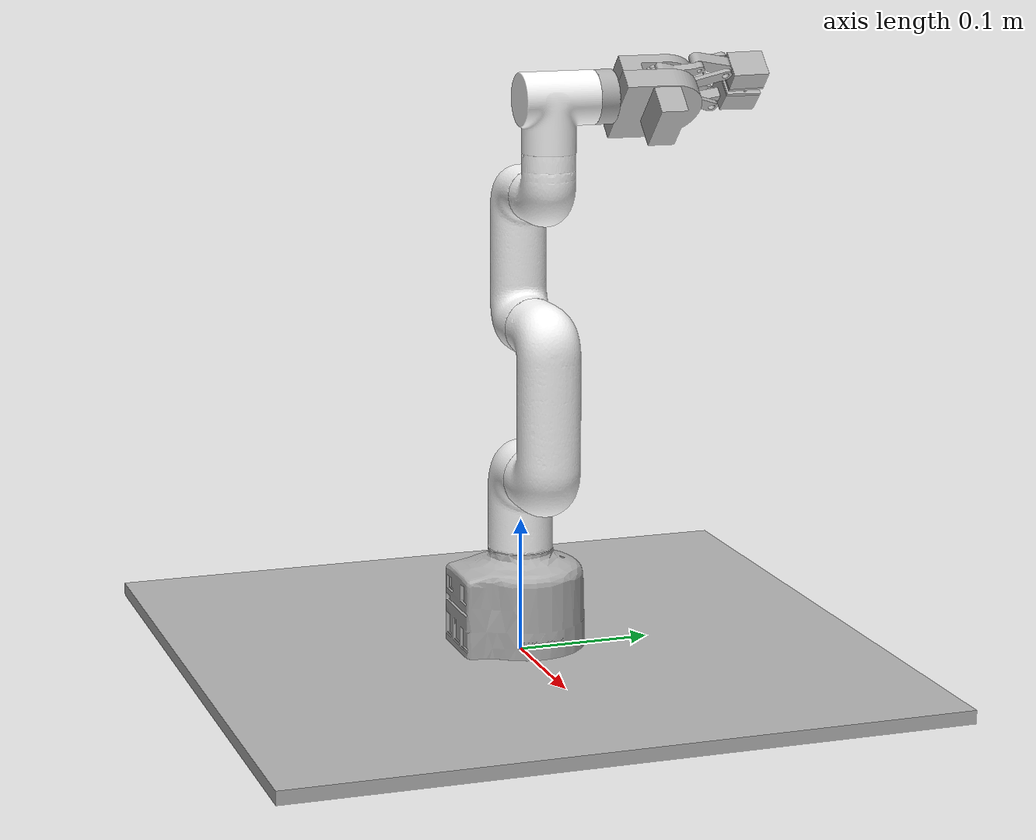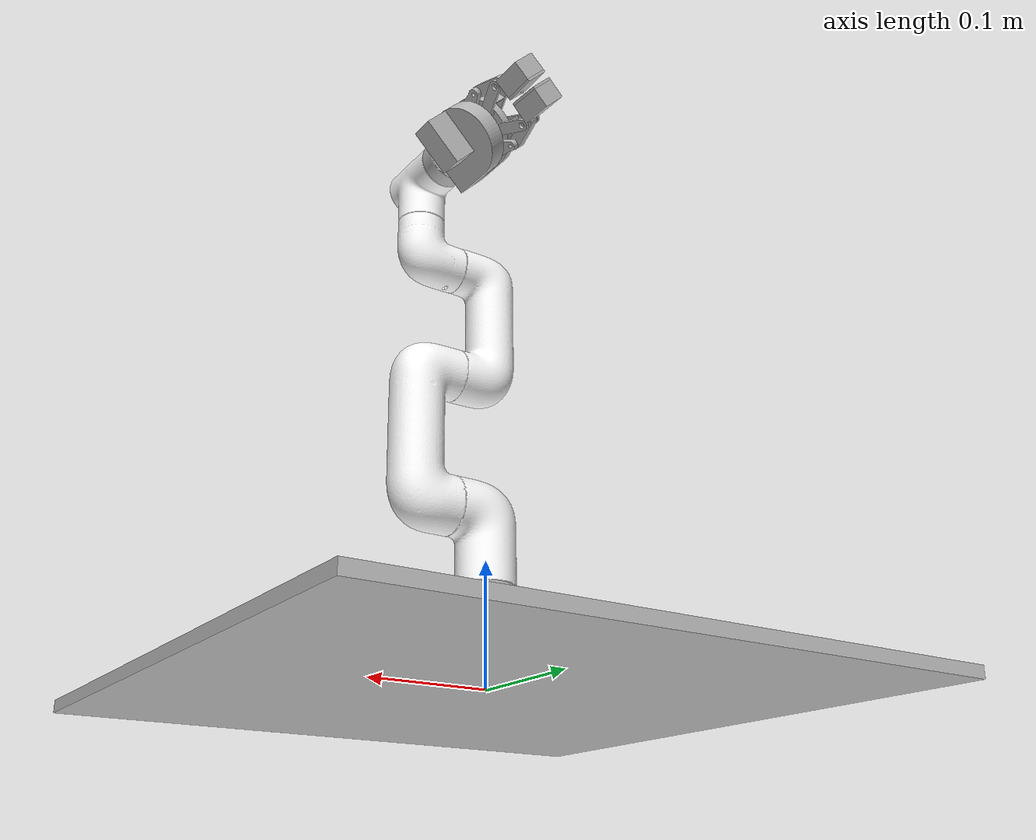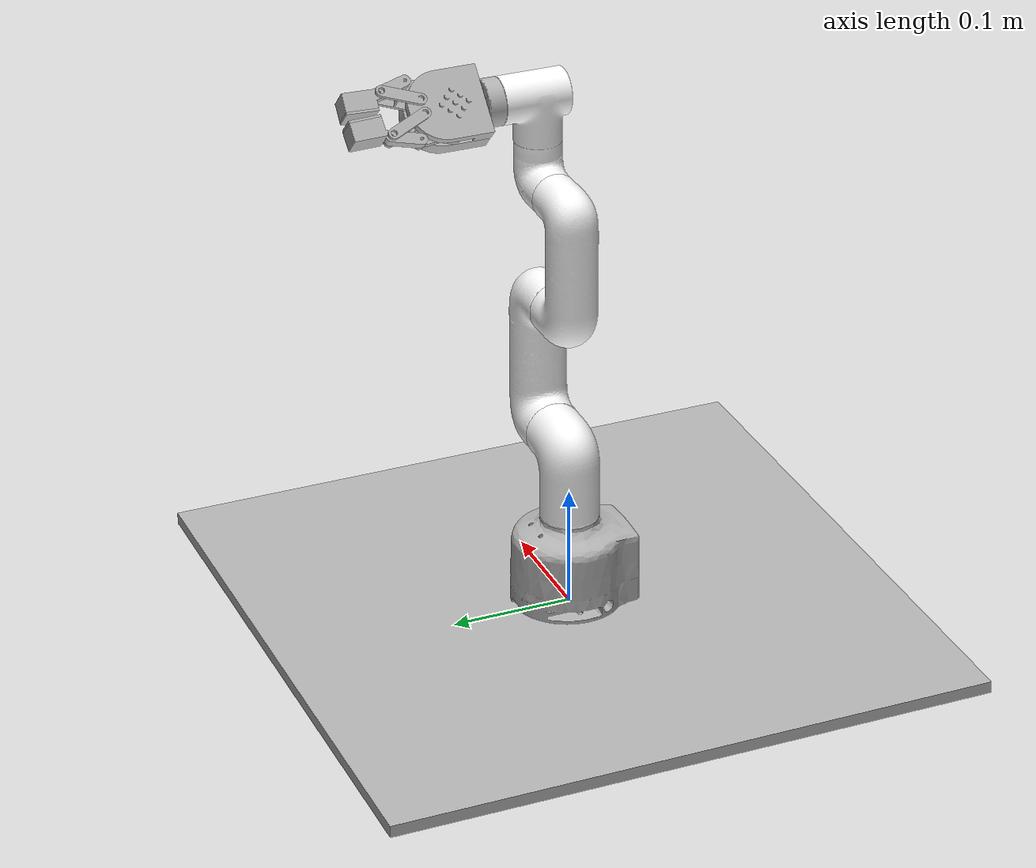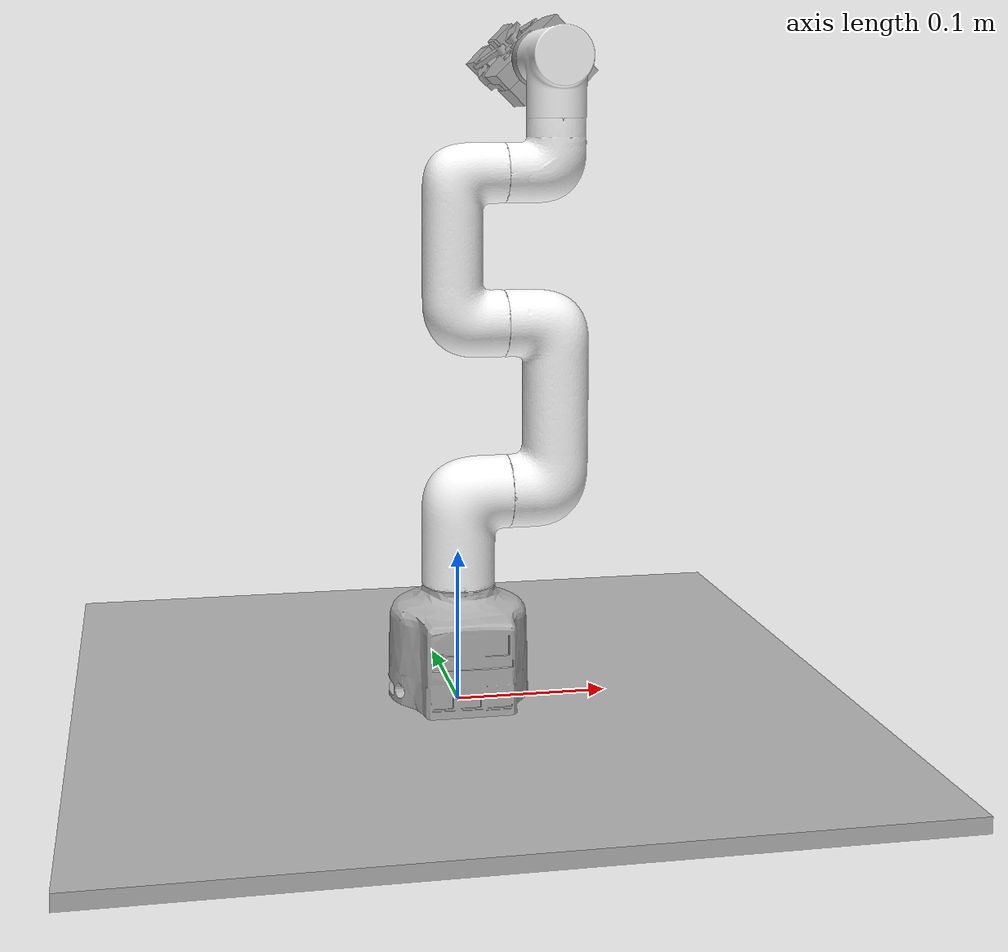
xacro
<?xml version="1.0" ?>
<robot name="mycobot" xmlns:xacro="http://www.ros.org/wiki/xacro">

<xacro:include filename="$(find mycobot)/urdf/materials.xacro" />
<xacro:include filename="$(find mycobot)/urdf/transmissionPos.xacro" />
<xacro:include filename="$(find mycobot)/urdf/gazebo.xacro" />
<xacro:property name="effort" value="10.0"/>
<xacro:property name="velocity" value="0.5"/>
<xacro:property name="friction" value="0.5"/>
<xacro:property name="damping" value="0.03"/>

<xacro:macro name="mimic_joint_plugin_gazebo" params="name_prefix parent_joint mimic_joint has_pid:=true multiplier:=1.0 offset:=0 sensitiveness:=0.0 max_effort:=1.0 robot_namespace:='/mycobot1'">
  <gazebo>
    <plugin name="${name_prefix}mimic_joint_plugin" filename="libroboticsgroup_upatras_gazebo_mimic_joint_plugin.so">
      <joint>${parent_joint}</joint>
      <mimicJoint>${mimic_joint}</mimicJoint>
      <xacro:if value="${has_pid}">                     <!-- if set to true, PID parameters from "/gazebo_ros_control/pid_gains/${mimic_joint}" are loaded -->
        <hasPID />
      </xacro:if>
      <multiplier>${multiplier}</multiplier>
      <offset>${offset}</offset>
      <sensitiveness>${sensitiveness}</sensitiveness>   <!-- if absolute difference between setpoint and process value is below this threshold, do nothing; 0.0 = disable [rad] -->
      <maxEffort>${max_effort}</maxEffort>              <!-- only taken into account if has_pid:=true [Nm] -->
      <xacro:unless value="${robot_namespace == '/mycobot1'}">
        <robotNamespace>${robot_namespace}</robotNamespace>
      </xacro:unless>
    </plugin>
  </gazebo>
</xacro:macro>

<link name="base_link">

<visual>
    <origin xyz="0 0 0" rpy="0 0 0"/>
    <geometry>
      <box size="0.5 0.5 0.01"/>
    </geometry>
    <material name="silver"/>
  </visual>
  <collision>
    <origin xyz="0 0 0" rpy="0 0 0"/>
    <geometry>
       <box size="0.5 0.5 0.01"/>
    </geometry>
  </collision>
</link>

<link name="Base_v8_1">
  <inertial>
    <origin xyz="-0.0007674952002842419 -0.00015853874615712218 0.038132613312138734" rpy="0 0 0"/>
    <mass value="1.76519268648240446"/>
    <inertia ixx="0.000215" iyy="0.000214" izz="0.000427" ixy="0.0" iyz="0.0" ixz="0.0"/>
  </inertial>
  <visual>
    <origin xyz="-0.0 -0.0 -0.0005" rpy="0 0 0"/>
    <geometry>
      <mesh filename="package://mycobot/meshes/Base_v8_1.stl" scale="0.001 0.001 0.001"/>
    </geometry>
    <material name="silver"/>
  </visual>
  <collision>
    <origin xyz="-0.0 -0.0 -0.0005" rpy="0 0 0"/>
    <geometry>
      <mesh filename="package://mycobot/meshes/Base_v8_1.stl" scale="0.001 0.001 0.001"/>
    </geometry>
  </collision>
</link>

<link name="Link2_v11_1">
  <inertial>
    <origin xyz="0.00493234364366476 -0.00029024291869713694 0.040093567041392386" rpy="0 0 0"/>
    <mass value="0.2785186125385807"/>
    <inertia ixx="0.000478" iyy="0.000461" izz="4.3e-05" ixy="-0.0" iyz="-0.0" ixz="-3.7e-05"/>
  </inertial>
  <visual>
    <origin xyz="0.0 -0.0 -0.0815" rpy="0 0 0"/>
    <geometry>
      <mesh filename="package://mycobot/meshes/Link2_v11_1.stl" scale="0.001 0.001 0.001"/>
    </geometry>
    <material name="white"/>
  </visual>
  <collision>
    <origin xyz="0.0 -0.0 -0.0815" rpy="0 0 0"/>
    <geometry>
      <mesh filename="package://mycobot/meshes/Link2_v11_1.stl" scale="0.001 0.001 0.001"/>
    </geometry>
  </collision>
</link>

<link name="Link3_v4_1">
  <inertial>
    <origin xyz="0.025442789888904478 4.750811867512109e-05 0.054179869855452395" rpy="0 0 0"/>
    <mass value="0.185186125385807"/>
    <inertia ixx="0.000478" iyy="0.000461" izz="4.3e-05" ixy="-0.0" iyz="-0.0" ixz="-3.7e-05"/>
  </inertial>
  <visual>
    <origin xyz="-0.033616 0.000561 -0.13974" rpy="0 0 0"/>
    <geometry>
      <mesh filename="package://mycobot/meshes/Link3_v4_1.stl" scale="0.001 0.001 0.001"/>
    </geometry>
    <material name="white"/>
  </visual>
  <collision>
    <origin xyz="-0.033616 0.000561 -0.13974" rpy="0 0 0"/>
    <geometry>
      <mesh filename="package://mycobot/meshes/Link3_v4_1.stl" scale="0.001 0.001 0.001"/>
    </geometry>
  </collision>
</link>

<link name="Link4_v5_1">
  <inertial>
    <origin xyz="-0.02758732009433006 4.597686248857067e-07 0.046114204196164466" rpy="0 0 0"/>
    <mass value="0.18425390113795425"/>
    <inertia ixx="0.000692" iyy="0.000665" izz="5.7e-05" ixy="-0.0" iyz="-0.0" ixz="4.4e-05"/>
  </inertial>
  <visual>
    <origin xyz="-0.030392 0.000524 -0.250217" rpy="0 0 0"/>
    <geometry>
      <mesh filename="package://mycobot/meshes/Link4_v5_1.stl" scale="0.001 0.001 0.001"/>
    </geometry>
    <material name="white"/>
  </visual>
  <collision>
    <origin xyz="-0.030392 0.000524 -0.250217" rpy="0 0 0"/>
    <geometry>
      <mesh filename="package://mycobot/meshes/Link4_v5_1.stl" scale="0.001 0.001 0.001"/>
    </geometry>
  </collision>
</link>

<link name="Link5_v17_1">
  <inertial>
    <origin xyz="0.024931350905881843 -0.0006156299812604405 0.01084040158683891" rpy="0 0 0"/>
    <mass value="0.1185186125385807"/>
    <inertia ixx="0.000478" iyy="0.000461" izz="4.3e-05" ixy="-0.0" iyz="-0.0" ixz="-3.7e-05"/>
  </inertial>
  <visual>
    <origin xyz="-0.030892 0.000524 -0.346117" rpy="0 0 0"/>
    <geometry>
      <mesh filename="package://mycobot/meshes/Link5_v17_1.stl" scale="0.001 0.001 0.001"/>
    </geometry>
    <material name="white"/>
  </visual>
  <collision>
    <origin xyz="-0.030892 0.000524 -0.346117" rpy="0 0 0"/>
    <geometry>
      <mesh filename="package://mycobot/meshes/Link5_v17_1.stl" scale="0.001 0.001 0.001"/>
    </geometry>
  </collision>
</link>

<link name="Link6_v7_1">
  <inertial>
    <origin xyz="-5.219821113858214e-06 0.003892509541421077 0.031003933303585918" rpy="0 0 0"/>
   <mass value="0.0785186125385807"/>
    <inertia ixx="0.000478" iyy="0.000461" izz="4.3e-05" ixy="-0.0" iyz="-0.0" ixz="-3.7e-05"/>
  </inertial>
  <visual>
    <origin xyz="-0.063371 0.000626 -0.379756" rpy="0 0 0"/>
    <geometry>
      <mesh filename="package://mycobot/meshes/Link6_v7_1.stl" scale="0.001 0.001 0.001"/>
    </geometry>
    <material name="white"/>
  </visual>
  <collision>
    <origin xyz="-0.063371 0.000626 -0.379756" rpy="0 0 0"/>
    <geometry>
      <mesh filename="package://mycobot/meshes/Link6_v7_1.stl" scale="0.001 0.001 0.001"/>
    </geometry>
  </collision>
</link>

<link name="Link7_v7_1">
  <inertial>
    <origin xyz="-1.694662708301431e-06 0.00681634498427619 -3.0979888756110796e-05" rpy="0 0 0"/>
     <mass value="0.08993217084915655"/>
    <inertia ixx="0.000215" iyy="0.000214" izz="0.000427" ixy="0.0" iyz="0.0" ixz="0.0"/>
  </inertial>
  <visual>
    <origin xyz="-0.063365 -0.031968 -0.418681" rpy="0 0 0"/>
    <geometry>
      <mesh filename="package://mycobot/meshes/Link7_v7_1.stl" scale="0.001 0.001 0.001"/>
    </geometry>
    <material name="silver"/>
  </visual>
  <collision>
    <origin xyz="-0.063365 -0.031968 -0.418681" rpy="0 0 0"/>
    <geometry>
      <mesh filename="package://mycobot/meshes/Link7_v7_1.stl" scale="0.001 0.001 0.001"/>
    </geometry>
  </collision>
</link>

<link name="Pickpoint">
  <visual>
    <origin xyz="0. 0 0" rpy="0 0 0"/>
    <geometry>
      <sphere radius="0.001"/>
    </geometry>
    <material name="silver"/>
  </visual>
</link>

<!-- ################# CLAW GRIPER ########################## -->

<!--############################# MYCOBOTORIGINALGRIPPER ORIENTAION ONE ############################# -->

<!--############################# MYCOBOTORIGINALGRIPPER ORIENTAION TWO ############################# -->
<link name="CobotBody1_v6_1">
  <inertial>
    <origin xyz="-0.02756607335265441 0.026996744232247016 -0.012737580384016955" rpy="0 0 0"/>
    <mass value="0.04713602513670684"/>
    <inertia ixx="2.3e-05" iyy="1.4e-05" izz="2.3e-05" ixy="0.0" iyz="-0.0" ixz="-7e-06"/>
  </inertial>
  <visual>
    <origin xyz="-0.083514 -0.046665 -0.438839" rpy="0 0 0"/>
    <geometry>
      <mesh filename="package://mycobot/meshes2/CobotBody1_v6_1.stl" scale="0.001 0.001 0.001"/>
    </geometry>
    <material name="silver"/>
  </visual>
  <collision>
    <origin xyz="-0.083514 -0.046665 -0.438839" rpy="0 0 0"/>
    <geometry>
      <mesh filename="package://mycobot/meshes2/CobotBody1_v6_1.stl" scale="0.001 0.001 0.001"/>
    </geometry>
  </collision>
</link>

<link name="CobotBody2_v8_1">
  <inertial>
    <origin xyz="0.01354853014215554 0.029167692230647718 -0.010093312955097855" rpy="0 0 0"/>
    <mass value="0.06728253732026138"/>
    <inertia ixx="3.3e-05" iyy="2.9e-05" izz="3.8e-05" ixy="-1e-06" iyz="0.0" ixz="-7e-06"/>
  </inertial>
  <visual>
    <origin xyz="-0.063365 -0.045668 -0.418683" rpy="0 0 0"/>
    <geometry>
      <mesh filename="package://mycobot/meshes2/CobotBody2_v8_1.stl" scale="0.001 0.001 0.001"/>
    </geometry>
    <material name="silver"/>
  </visual>
  <collision>
    <origin xyz="-0.063365 -0.045668 -0.418683" rpy="0 0 0"/>
    <geometry>
      <mesh filename="package://mycobot/meshes2/CobotBody2_v8_1.stl" scale="0.001 0.001 0.001"/>
    </geometry>
  </collision>
</link>

<link name="grippergear_v4_1">
  <inertial>
    <origin xyz="0.003681787468920672 0.006869589390317968 0.00014760336092256576" rpy="0 0 0"/>
    <mass value="0.025493766775652973"/>
    <inertia ixx="3e-06" iyy="1e-06" izz="3e-06" ixy="-0.0" iyz="-0.0" ixz="-0.0"/>
  </inertial>
  <visual>
    <origin xyz="-0.069726 -0.076666 -0.432831" rpy="0 0 0"/>
    <geometry>
      <mesh filename="package://mycobot/meshes2/grippergear_v4_1.stl" scale="0.001 0.001 0.001"/>
    </geometry>
    <material name="silver"/>
  </visual>
  <collision>
    <origin xyz="-0.069726 -0.076666 -0.432831" rpy="0 0 0"/>
    <geometry>
      <mesh filename="package://mycobot/meshes2/grippergear_v4_1.stl" scale="0.001 0.001 0.001"/>
    </geometry>
  </collision>
</link>

<link name="grippergear_v4__1__1">
  <inertial>
    <origin xyz="-0.0001450719826682767 0.006870273548366029 -0.00368018598106562" rpy="0 0 0"/>
    <mass value="0.025493766775652973"/>
    <inertia ixx="3e-06" iyy="1e-06" izz="3e-06" ixy="0.0" iyz="0.0" ixz="-0.0"/>
  </inertial>
  <visual>
    <origin xyz="-0.049223 -0.076669 -0.412321" rpy="0 0 0"/>
    <geometry>
      <mesh filename="package://mycobot/meshes2/grippergear_v4__1__1.stl" scale="0.001 0.001 0.001"/>
    </geometry>
    <material name="silver"/>
  </visual>
  <collision>
    <origin xyz="-0.049223 -0.076669 -0.412321" rpy="0 0 0"/>
    <geometry>
      <mesh filename="package://mycobot/meshes2/grippergear_v4__1__1.stl" scale="0.001 0.001 0.001"/>
    </geometry>
  </collision>
</link>

<link name="gripperfinger_v2__1__1">
  <inertial>
    <origin xyz="-0.010253110064007559 0.0351459363378961 -0.00459314994843163" rpy="0 0 0"/>
    <mass value="0.08436998094688802"/>
    <inertia ixx="2e-05" iyy="5e-06" izz="2e-05" ixy="3e-06" iyz="3e-06" ixz="-0.0"/>
  </inertial>
  <visual>
    <origin xyz="-0.076553 -0.105034 -0.439664" rpy="0 0 0"/>
    <geometry>
      <mesh filename="package://mycobot/meshes2/gripperfinger_v2__1__1.stl" scale="0.001 0.001 0.001"/>
    </geometry>
    <material name="silver"/>
  </visual>
  <collision>
    <origin xyz="-0.076553 -0.105034 -0.439664" rpy="0 0 0"/>
    <geometry>
      <mesh filename="package://mycobot/meshes2/gripperfinger_v2__1__1.stl" scale="0.001 0.001 0.001"/>
    </geometry>
  </collision>
</link>

<link name="gripperfinger_v2_1">
  <inertial>
    <origin xyz="0.004594939659581063 0.035142860051472546 0.010259606687857248" rpy="0 0 0"/>
    <mass value="0.08436998094688802"/>
    <inertia ixx="2e-05" iyy="5e-06" izz="2e-05" ixy="-3e-06" iyz="-3e-06" ixz="-0.0"/>
  </inertial>
  <visual>
    <origin xyz="-0.042397 -0.10504 -0.405497" rpy="0 0 0"/>
    <geometry>
      <mesh filename="package://mycobot/meshes2/gripperfinger_v2_1.stl" scale="0.001 0.001 0.001"/>
    </geometry>
    <material name="silver"/>
  </visual>
  <collision>
    <origin xyz="-0.042397 -0.10504 -0.405497" rpy="0 0 0"/>
    <geometry>
      <mesh filename="package://mycobot/meshes2/gripperfinger_v2_1.stl" scale="0.001 0.001 0.001"/>
    </geometry>
  </collision>
</link>

<link name="gripperLink_v2__1__1">
  <inertial>
    <origin xyz="-0.00628818154822873 0.013226594840114875 -0.0016491090671174602" rpy="0 0 0"/>
    <mass value="0.016359169383963708"/>
    <inertia ixx="2e-06" iyy="1e-06" izz="2e-06" ixy="0.0" iyz="0.0" ixz="0.0"/>
  </inertial>
  <visual>
    <origin xyz="-0.055056 -0.098368 -0.418866" rpy="0 0 0"/>
    <geometry>
      <mesh filename="package://mycobot/meshes2/gripperLink_v2__1__1.stl" scale="0.001 0.001 0.001"/>
    </geometry>
    <material name="silver"/>
  </visual>
  <collision>
    <origin xyz="-0.055056 -0.098368 -0.418866" rpy="0 0 0"/>
    <geometry>
      <mesh filename="package://mycobot/meshes2/gripperLink_v2__1__1.stl" scale="0.001 0.001 0.001"/>
    </geometry>
  </collision>
</link>

<link name="gripperLink_v2_1">
  <inertial>
    <origin xyz="0.0014868052046226182 0.013320715488719811 0.006128076097648927" rpy="0 0 0"/>
    <mass value="0.016359169383963708"/>
    <inertia ixx="2e-06" iyy="1e-06" izz="2e-06" ixy="-0.0" iyz="-0.0" ixz="0.0"/>
  </inertial>
  <visual>
    <origin xyz="-0.063186 -0.098367 -0.426999" rpy="0 0 0"/>
    <geometry>
      <mesh filename="package://mycobot/meshes2/gripperLink_v2_1.stl" scale="0.001 0.001 0.001"/>
    </geometry>
    <material name="silver"/>
  </visual>
  <collision>
    <origin xyz="-0.063186 -0.098367 -0.426999" rpy="0 0 0"/>
    <geometry>
      <mesh filename="package://mycobot/meshes2/gripperLink_v2_1.stl" scale="0.001 0.001 0.001"/>
    </geometry>
  </collision>
</link>

<link name="fingerpad__1__2">
  <inertial>
    <origin xyz="0.008467925809456427 -0.012967480262240566 -0.006382980578978625" rpy="0 0 0"/>
    <mass value="0.00115870520806515"/>
    <inertia ixx="0.0" iyy="0.0" izz="0.0" ixy="0.0" iyz="0.0" ixz="0.0"/>
  </inertial>
  <visual>
    <origin xyz="-0.04605 -0.159581 -0.429669" rpy="0 0 0"/>
    <geometry>
      <mesh filename="package://mycobot/meshes2/fingerpad__1__2.stl" scale="0.001 0.001 0.001"/>
    </geometry>
    <material name="silver"/>
  </visual>
  <collision>
    <origin xyz="-0.04605 -0.159581 -0.429669" rpy="0 0 0"/>
    <geometry>
      <mesh filename="package://mycobot/meshes2/fingerpad__1__2.stl" scale="0.001 0.001 0.001"/>
    </geometry>
  </collision>
</link>

<link name="fingerpad__1__1">
  <inertial>
    <origin xyz="0.006383903786117043 -0.012967124725293766 -0.008467615441042076" rpy="0 0 0"/>
    <mass value="0.00115870520806515"/>
    <inertia ixx="0.0" iyy="0.0" izz="0.0" ixy="-0.0" iyz="-0.0" ixz="0.0"/>
  </inertial>
  <visual>
    <origin xyz="-0.05239 -0.15958 -0.436011" rpy="0 0 0"/>
    <geometry>
      <mesh filename="package://mycobot/meshes2/fingerpad__1__1.stl" scale="0.001 0.001 0.001"/>
    </geometry>
    <material name="silver"/>
  </visual>
  <collision>
    <origin xyz="-0.05239 -0.15958 -0.436011" rpy="0 0 0"/>
    <geometry>
      <mesh filename="package://mycobot/meshes2/fingerpad__1__1.stl" scale="0.001 0.001 0.001"/>
    </geometry>
  </collision>
</link>

<joint name="ReferencePick" type="fixed">
  <origin xyz="0.0 0.115 0.0" rpy="0 0 0"/>
  <parent link="Link7_v7_1"/>
  <child link="Pickpoint"/>

</joint>
<joint name="Rigid39" type="fixed">
  <origin xyz="0.020149 0.000997 0.020156" rpy="0 0 0"/>
  <parent link="CobotBody2_v8_1"/>
  <child link="CobotBody1_v6_1"/>
</joint>

<joint name="GripperJoint" type="revolute">
  <origin xyz="-0.013788 0.030001 -0.006008" rpy="0 0 0"/>
  <parent link="CobotBody1_v6_1"/>
  <child link="grippergear_v4_1"/>
  <axis xyz="0.707222 0.000107 -0.706992"/>
  <limit upper="1.57931" lower="0" effort="${effort}" velocity="${velocity}"/>
  <dynamics damping="${damping}" friction="${friction}" />
</joint>

<joint name="GripperJointM" type="revolute">
  <origin xyz="-0.034291 0.030004 -0.026518" rpy="0 0 0"/>
  <parent link="CobotBody1_v6_1"/>
  <child link="grippergear_v4__1__1"/>
  <axis xyz="0.707222 0.000107 -0.706992"/>
  <limit upper="0" lower="-1.57931" effort="${effort}" velocity="${velocity}"/>
  <mimic joint="GripperJoint" multiplier="-1"/>
  <dynamics damping="${damping}" friction="${friction}" />
</joint>

<joint name="LinkageJoint" type="revolute">
  <origin xyz="-0.020328 0.051702 -0.01184" rpy="0 0 0"/>
  <parent link="CobotBody1_v6_1"/>
  <child link="gripperLink_v2_1"/>
  <axis xyz="0.707222 0.000107 -0.706992"/>
  <mimic joint="GripperJoint" multiplier="1"/>
  <limit upper="1.57931" lower="-1.57931" effort="${effort}" velocity="${velocity}"/>
  <dynamics damping="${damping}" friction="${friction}" />
</joint>

<joint name="LinkageJointM" type="revolute">
  <origin xyz="-0.028458 0.051703 -0.019973" rpy="0 0 0"/>
  <parent link="CobotBody1_v6_1"/>
  <child link="gripperLink_v2__1__1"/>
  <axis xyz="0.707222 0.000107 -0.706992"/>
  <mimic joint="LinkageJoint" multiplier="-1"/>
  <limit upper="1.57931" lower="-1.57931" effort="${effort}" velocity="${velocity}"/>
  <dynamics damping="${damping}" friction="${friction}" />
</joint>

<joint name="FingerJointM" type="revolute">
  <origin xyz="-0.006826 0.028371 -0.006824" rpy="0 0 0"/>
  <parent link="grippergear_v4__1__1"/>
  <child link="gripperfinger_v2_1"/>
  <axis xyz="-0.707222 -0.000107 0.706992"/>
  <mimic joint="FingerJoint" multiplier="-1"/>
  <limit upper="1.57931" lower="-1.57931" effort="${effort}" velocity="${velocity}"/>
  <dynamics damping="${damping}" friction="${friction}" />
</joint>

<joint name="FingerJoint" type="revolute">
  <origin xyz="0.006827 0.028368 0.006833" rpy="0 0 0"/>
  <parent link="grippergear_v4_1"/>
  <child link="gripperfinger_v2__1__1"/>
  <axis xyz="-0.707222 -0.000107 0.706992"/>
  <mimic joint="GripperJoint" multiplier="1"/>
  <limit upper="1.57931" lower="-1.57931" effort="${effort}" velocity="${velocity}"/>
  <dynamics damping="${damping}" friction="${friction}" />
</joint>

<joint name="Rigid49" type="fixed">
  <origin xyz="0.0 0.0137 2e-06" rpy="0 0 0"/>
  <parent link="Link7_v7_1"/>
  <child link="CobotBody2_v8_1"/>
</joint>

<joint name="Rigid52" type="fixed">
  <origin xyz="-0.024163 0.054546 -0.003653" rpy="0 0 0"/>
  <parent link="gripperfinger_v2__1__1"/>
  <child link="fingerpad__1__1"/>
</joint>

<joint name="Rigid53" type="fixed">
  <origin xyz="0.003653 0.054541 0.024172" rpy="0 0 0"/>
  <parent link="gripperfinger_v2_1"/>
  <child link="fingerpad__1__2"/>
</joint>

<!-- ############################## ROBOT BODY ############################# -->
<joint name="Rigid6" type="fixed">
  <origin xyz="0.0 0.0 0.0005" rpy="0 0 0"/>
  <parent link="base_link"/>
  <child link="Base_v8_1"/>
</joint>

<joint name="Joint1" type="revolute">
  <origin xyz="-0.0 0.0 0.081" rpy="0 0 0"/>
  <parent link="Base_v8_1"/>
  <child link="Link2_v11_1"/>
  <axis xyz="0.0 0.0 1.0"/>
  <dynamics damping="${damping}" friction="${friction}" />
  <limit upper="3.14159" lower="-3.14159" effort="${effort}" velocity="${velocity}"/>
</joint>

<joint name="Joint2" type="revolute">
  <origin xyz="0.033616 -0.000561 0.05824" rpy="0 0 0"/>
  <parent link="Link2_v11_1"/>
  <child link="Link3_v4_1"/>
  <axis xyz="1.0 0.0 0.0"/>
  <dynamics damping="${damping}" friction="${friction}" />
  <limit upper="3.14159" lower="-3.14159" effort="${effort}" velocity="${velocity}"/>
</joint>

<joint name="Joint3" type="revolute">
  <origin xyz="-0.003224 3.7e-05 0.110477" rpy="0 0 0"/>
  <parent link="Link3_v4_1"/>
  <child link="Link4_v5_1"/>
  <axis xyz="1.0 0.0 0.0"/>
  <dynamics damping="${damping}" friction="${friction}" />
  <limit upper="3.14159" lower="-3.14159" effort="${effort}" velocity="${velocity}"/>
</joint>

<joint name="Joint4" type="revolute">
  <origin xyz="0.0005 0.0 0.0959" rpy="0 0 0"/>
  <parent link="Link4_v5_1"/>
  <child link="Link5_v17_1"/>
  <axis xyz="1.0 0.0 0.0"/>
  <dynamics damping="${damping}" friction="${friction}" />
  <limit upper="3.14159" lower="-3.14159" effort="${effort}" velocity="${velocity}"/>
</joint>

<joint name="Joint5" type="revolute">
  <origin xyz="0.032479 -0.000102 0.033639" rpy="0 0 0"/>
  <parent link="Link5_v17_1"/>
  <child link="Link6_v7_1"/>
  <axis xyz="-0.000163 -0.000151 1.0"/>
  <dynamics damping="${damping}" friction="${friction}" />
  <limit upper="2.0943" lower="-2.879" effort="${effort}" velocity="${velocity}"/>
</joint>

<joint name="Joint6" type="revolute">
  <origin xyz="-6e-06 0.032594 0.038925" rpy="0 0 0"/>
  <parent link="Link6_v7_1"/>
  <child link="Link7_v7_1"/>
  <axis xyz="0.0 1.0 0.000151"/>
  <dynamics damping="${damping}" friction="${friction}" />
  <limit upper="3.14159" lower="-3.14159" effort="${effort}" velocity="${velocity}"/>
</joint>

</robot>

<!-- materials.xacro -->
<robot name="mycobot" xmlns:xacro="http://www.ros.org/wiki/xacro" >

<material name="white">
  <color rgba="1.000 1.000 1.000 1.000"/>
</material>

<material name="black">
  <color rgba="0.000 0.000 0.000 1.000"/>
</material>

<material name="silver">
  <color rgba="0.700 0.700 0.700 1.000"/>
</material>
</robot>

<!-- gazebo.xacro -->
<robot name="mycobot" xmlns:xacro="http://www.ros.org/wiki/xacro">

<xacro:property name="body_color" value="Gazebo/White"/>
<xacro:property name="base_color" value="Gazebo/Grey" />
<xacro:property name="pad_color" value="Gazebo/Black"/>
<xacro:property name="standard_friction" value="2.0" />

<gazebo>
        <plugin name="gazebo_ros_control" filename="libgazebo_ros_control.so">
        <robotNamespace>/mycobot1</robotNamespace>
        </plugin>
</gazebo>

<gazebo>
   <plugin name="gazebo_grasp_fix" filename="libgazebo_grasp_fix.so">
        <arm>
           <arm_name>mycobot</arm_name>
           <palm_link>Link7_v7_1</palm_link>
           <gripper_link>Claw_v6_2</gripper_link>
           <gripper_link>Claw_v6__1__2</gripper_link>
           <gripper_link>Claw_v6__2__2</gripper_link>
           <gripper_link>Claw_v6__3__2</gripper_link>
        </arm>
       <forces_angle_tolerance>100</forces_angle_tolerance>
       <update_rate>4</update_rate>
       <grip_count_threshold>4</grip_count_threshold>
       <max_grip_count>8</max_grip_count>
       <release_tolerance>0.005</release_tolerance>
       <disable_collisions_on_attach>false</disable_collisions_on_attach>
       <contact_topic>__default_topic__</contact_topic>
    </plugin>
</gazebo>

<!-- Used for fixing robot to Gazebo 'base_link' -->
<link name="world"/>

<joint name="fixed" type="fixed">
<parent link="world"/>
<child link="base_link"/>
</joint>

<gazebo reference="base_link">
    <mu1>${standard_friction}</mu1>
    <mu2>${standard_friction}</mu2>
    <material>${base_color}</material>
    <selfCollide>false</selfCollide>
    <gravity>true</gravity>
</gazebo>

<gazebo reference="Base_v8_1">
    <mu1>${standard_friction}</mu1>
    <mu2>${standard_friction}</mu2>
    <material>${base_color}</material>
    <selfCollide>false</selfCollide>

</gazebo>

<gazebo reference="Link2_v11_1">
    <mu1>${standard_friction}</mu1>
    <mu2>${standard_friction}</mu2>
    <material>${body_color}</material>
    <selfCollide>false</selfCollide>

</gazebo>

<gazebo reference="Link3_v4_1">
    <mu1>${standard_friction}</mu1>
    <mu2>${standard_friction}</mu2>
    <material>${body_color}</material>
    <selfCollide>false</selfCollide>

</gazebo>

<gazebo reference="Link4_v5_1">
    <mu1>${standard_friction}</mu1>
    <mu2>${standard_friction}</mu2>
    <material>${body_color}</material>
    <selfCollide>false</selfCollide>
</gazebo>

<gazebo reference="Link5_v17_1">
    <mu1>${standard_friction}</mu1>
    <mu2>${standard_friction}</mu2>
    <material>${body_color}</material>
    <selfCollide>false</selfCollide>

</gazebo>

<gazebo reference="Link6_v7_1">
    <mu1>${standard_friction}</mu1>
    <mu2>${standard_friction}</mu2>
    <material>${body_color}</material>
    <selfCollide>false</selfCollide>

</gazebo>

<gazebo reference="Link7_v7_1">
    <mu1>${standard_friction}</mu1>
    <mu2>${standard_friction}</mu2>
    <material>${base_color}</material>
    <selfCollide>false</selfCollide>

</gazebo>

<!-- ############################## CLAW GRIPPER ####################################-->
<gazebo reference="endpiece_v1_2">
    <mu1>${standard_friction}</mu1>
    <mu2>${standard_friction}</mu2>
    <material>${pad_color}</material>
    <selfCollide>false</selfCollide>

</gazebo>

<gazebo reference="clawbase_v5_2">
    <mu1>${standard_friction}</mu1>
    <mu2>${standard_friction}</mu2>
    <material>${pad_color}</material>
    <selfCollide>false</selfCollide>

</gazebo>

<gazebo reference="claw-bottom_v11__2__2">
    <mu1>${standard_friction}</mu1>
    <mu2>${standard_friction}</mu2>
    <material>${pad_color}</material>
    <selfCollide>false</selfCollide>

</gazebo>

<gazebo reference="claw-bottom_v11_2">
    <mu1>${standard_friction}</mu1>
    <mu2>${standard_friction}</mu2>
    <material>${pad_color}</material>
    <selfCollide>false</selfCollide>

</gazebo>

<gazebo reference="claw-bottom_v11__3__2">
    <mu1>${standard_friction}</mu1>
    <mu2>${standard_friction}</mu2>
    <material>${pad_color}</material>
    <selfCollide>false</selfCollide>

</gazebo>

<gazebo reference="claw-bottom_v11__1__2">
    <mu1>${standard_friction}</mu1>
    <mu2>${standard_friction}</mu2>
    <material>${pad_color}</material>
    <selfCollide>false</selfCollide>

</gazebo>

<gazebo reference="Claw_v6_2">
    <mu1>${standard_friction}</mu1>
    <mu2>${standard_friction}</mu2>
    <material>${pad_color}</material>
    <selfCollide>false</selfCollide>

</gazebo>

<gazebo reference="Claw_v6__3__2">
    <mu1>${standard_friction}</mu1>
    <mu2>${standard_friction}</mu2>
    <material>${pad_color}</material>
    <selfCollide>false</selfCollide>

</gazebo>

<gazebo reference="Claw_v6__2__2">
    <mu1>${standard_friction}</mu1>
    <mu2>${standard_friction}</mu2>
    <material>${pad_color}</material>
    <selfCollide>false</selfCollide>

</gazebo>

<gazebo reference="Claw_v6__1__2">
    <mu1>${standard_friction}</mu1>
    <mu2>${standard_friction}</mu2>
    <material>${pad_color}</material>
    <selfCollide>false</selfCollide>

</gazebo>

</robot>
